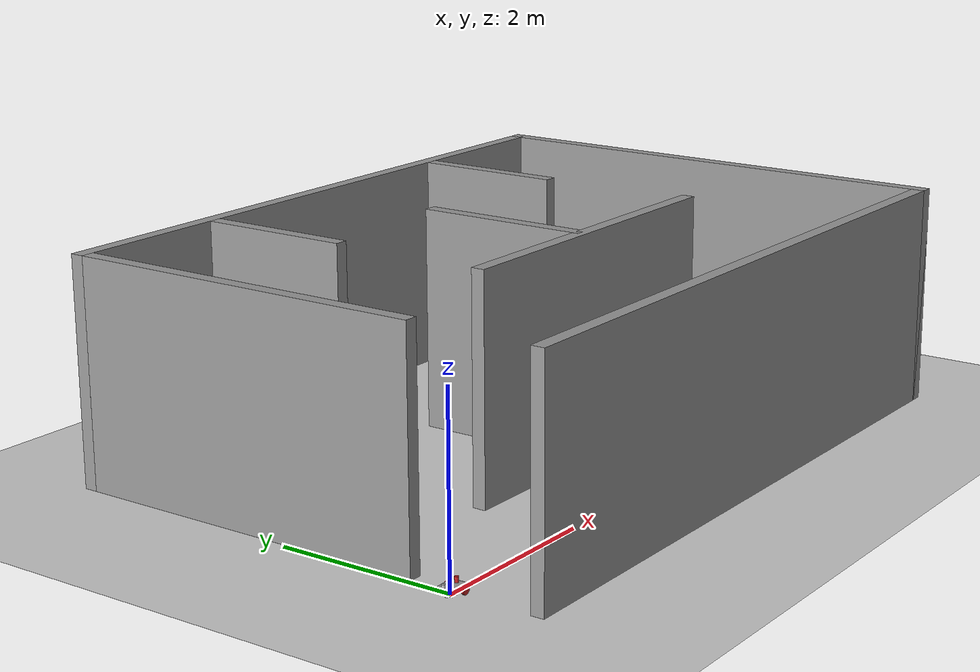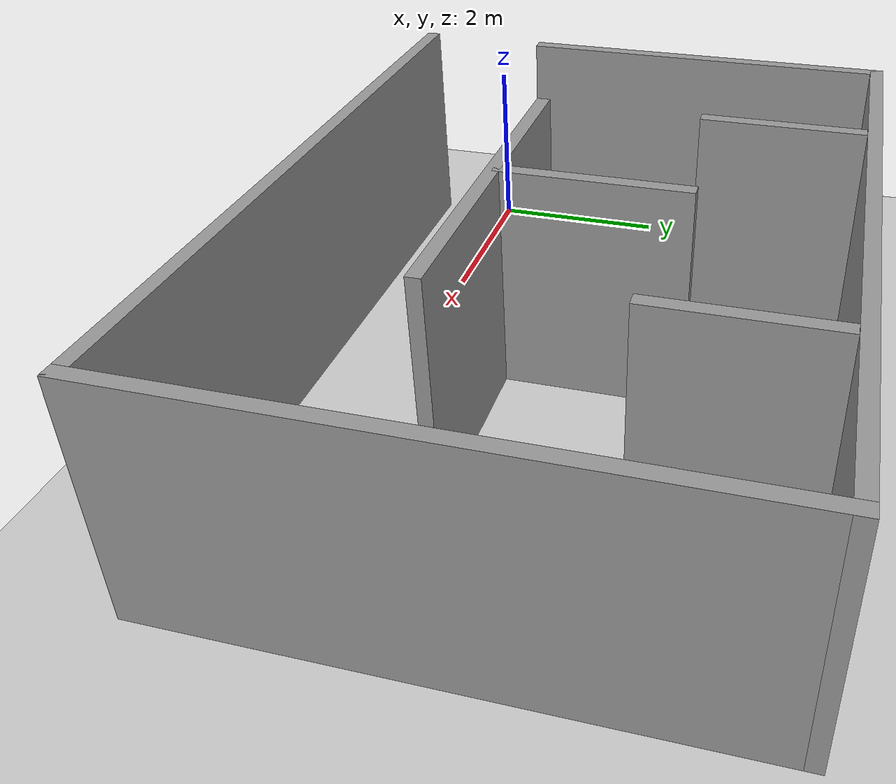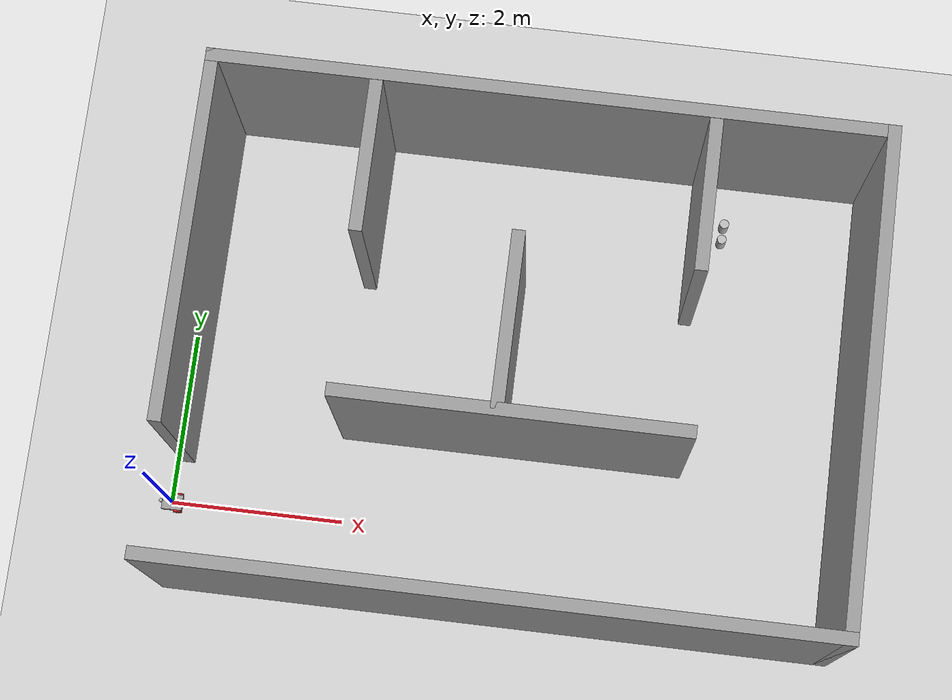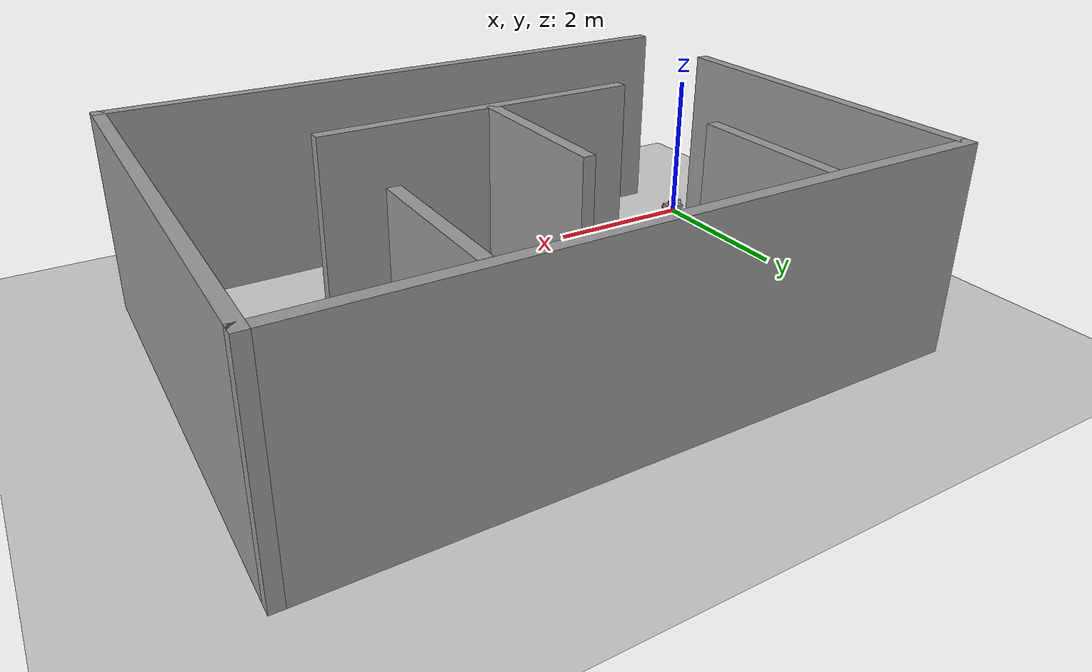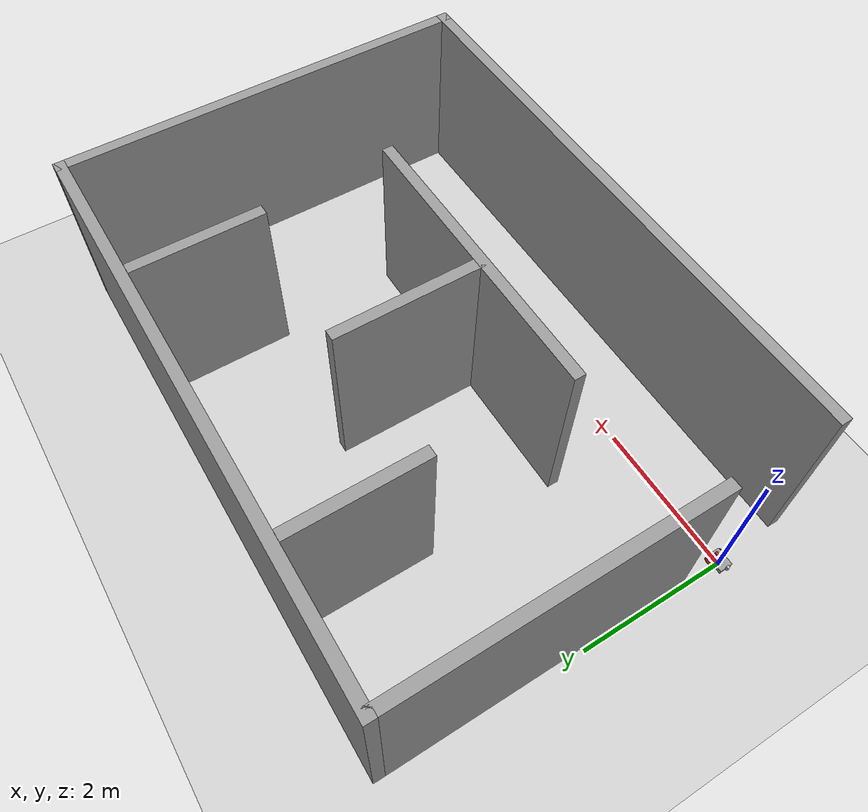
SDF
<sdf version="1.6">
 <world name="default">
  <light name="sun" type="directional">
   <pose>0 0 10 0 -0 0</pose>
   <diffuse>0.8 0.8 0.8 1</diffuse>
   <specular>0.2 0.2 0.2 1</specular>
   <attenuation>
    <range>1000</range>
    <constant>0.9</constant>
    <linear>0.01</linear>
    <quadratic>0.001</quadratic>
   </attenuation>
   <direction>-0.5 0.1 -0.9</direction>
  </light>
  <model name="ground_plane">
   <static>1</static>
   <link name="link">
    <collision name="collision">
     <geometry><plane><normal>0 0 1</normal><size>100 100</size></plane></geometry>
     <surface>
      <contact><collide_bitmask>65535</collide_bitmask></contact>
      <friction><ode><mu>100</mu><mu2>50</mu2></ode></friction>
     </surface>
    </collision>
    <visual name="visual">
     <cast_shadows>0</cast_shadows>
     <geometry><plane><normal>0 0 1</normal><size>100 100</size></plane></geometry>
     <material>
      <script><uri>file://media/materials/scripts/gazebo.material</uri><name>Gazebo/Grey</name></script>
     </material>
    </visual>
   </link>
  </model>
  <gravity>0 0 -9.8</gravity>
  <magnetic_field>6e-06 2.3e-05 -4.2e-05</magnetic_field>
  <atmosphere type="adiabatic"/>
  <physics name="default_physics" default="0" type="ode">
   <max_step_size>0.001</max_step_size>
   <real_time_factor>1</real_time_factor>
   <real_time_update_rate>1000</real_time_update_rate>
  </physics>
  <scene><ambient>0.4 0.4 0.4 1</ambient><background>0.7 0.7 0.7 1</background><shadows>1</shadows></scene>
  <audio><device>default</device></audio>
  <spherical_coordinates>
   <surface_model>EARTH_WGS84</surface_model>
   <latitude_deg>0</latitude_deg>
   <longitude_deg>0</longitude_deg>
   <elevation>0</elevation>
   <heading_deg>0</heading_deg>
  </spherical_coordinates>
  <model name="test_maze">
   <pose>3.91587 1.87197 0 0 -0 0</pose>
   <link name="Wall_1">
    <collision name="Wall_1_Collision">
     <geometry><box><size>7.75 0.15 2.5</size></box></geometry>
     <pose>0 0 1.25 0 -0 0</pose>
    </collision>
    <visual name="Wall_1_Visual">
     <pose>0 0 1.25 0 -0 0</pose>
     <geometry><box><size>7.75 0.15 2.5</size></box></geometry>
     <material>
      <script><uri>file://media/materials/scripts/gazebo.material</uri><name>Gazebo/Grey</name></script>
      <ambient>1 1 1 1</ambient>
     </material>
     <meta><layer>0</layer></meta>
    </visual>
    <pose>0 -2.8 0 0 -0 0</pose>
   </link>
   <link name="Wall_13">
    <collision name="Wall_13_Collision">
     <geometry><box><size>1.75 0.15 2.5</size></box></geometry>
     <pose>0 0 1.25 0 -0 0</pose>
    </collision>
    <visual name="Wall_13_Visual">
     <pose>0 0 1.25 0 -0 0</pose>
     <geometry><box><size>1.75 0.15 2.5</size></box></geometry>
     <material>
      <script><uri>file://media/materials/scripts/gazebo.material</uri><name>Gazebo/Grey</name></script>
      <ambient>1 1 1 1</ambient>
     </material>
     <meta><layer>0</layer></meta>
    </visual>
    <pose>1.84159 1.84882 0 0 -0 -1.5708</pose>
   </link>
   <link name="Wall_15">
    <collision name="Wall_15_Collision">
     <geometry><box><size>4 0.15 2.5</size></box></geometry>
     <pose>0 0 1.25 0 -0 0</pose>
    </collision>
    <visual name="Wall_15_Visual">
     <pose>0 0 1.25 0 -0 0</pose>
     <geometry><box><size>4 0.15 2.5</size></box></geometry>
     <material>
      <script><uri>file://media/materials/scripts/gazebo.material</uri><name>Gazebo/Grey</name></script>
      <ambient>1 1 1 1</ambient>
     </material>
     <meta><layer>0</layer></meta>
    </visual>
    <pose>-0.026602 -0.807875 0 0 -0 0</pose>
   </link>
   <link name="Wall_2">
    <collision name="Wall_2_Collision">
     <geometry><box><size>5.75 0.15 2.5</size></box></geometry>
     <pose>0 0 1.25 0 -0 0</pose>
    </collision>
    <visual name="Wall_2_Visual">
     <pose>0 0 1.25 0 -0 0</pose>
     <geometry><box><size>5.75 0.15 2.5</size></box></geometry>
     <material>
      <script><uri>file://media/materials/scripts/gazebo.material</uri><name>Gazebo/Grey</name></script>
      <ambient>1 1 1 1</ambient>
     </material>
     <meta><layer>0</layer></meta>
    </visual>
    <pose>3.8 0 0 0 -0 1.5708</pose>
   </link>
   <link name="Wall_3">
    <collision name="Wall_3_Collision">
     <geometry><box><size>7.75 0.15 2.5</size></box></geometry>
     <pose>0 0 1.25 0 -0 0</pose>
    </collision>
    <visual name="Wall_3_Visual">
     <pose>0 0 1.25 0 -0 0</pose>
     <geometry><box><size>7.75 0.15 2.5</size></box></geometry>
     <material>
      <script><uri>file://media/materials/scripts/gazebo.material</uri><name>Gazebo/Grey</name></script>
      <ambient>1 1 1 1</ambient>
     </material>
     <meta><layer>0</layer></meta>
    </visual>
    <pose>0 2.8 0 0 -0 3.14159</pose>
   </link>
   <link name="Wall_4">
    <collision name="Wall_4_Collision">
     <geometry><box><size>4.25 0.15 2.5</size></box></geometry>
     <pose>0 0 1.25 0 -0 0</pose>
    </collision>
    <visual name="Wall_4_Visual">
     <pose>0 0 1.25 0 -0 0</pose>
     <geometry><box><size>4.25 0.15 2.5</size></box></geometry>
     <material>
      <script><uri>file://media/materials/scripts/gazebo.material</uri><name>Gazebo/Grey</name></script>
      <ambient>1 1 1 1</ambient>
     </material>
     <meta><layer>0</layer></meta>
    </visual>
    <pose>-3.8 0.75 0 0 -0 -1.5708</pose>
   </link>
   <link name="Wall_6">
    <collision name="Wall_6_Collision">
     <geometry><box><size>1.75 0.15 2.5</size></box></geometry>
     <pose>0 0 1.25 0 -0 0</pose>
    </collision>
    <visual name="Wall_6_Visual">
     <pose>0 0 1.25 0 -0 0</pose>
     <geometry><box><size>1.75 0.15 2.5</size></box></geometry>
     <material>
      <script><uri>file://media/materials/scripts/gazebo.material</uri><name>Gazebo/Grey</name></script>
      <ambient>1 1 1 1</ambient>
     </material>
     <meta><layer>0</layer></meta>
    </visual>
    <pose>-1.9516 1.84882 0 0 -0 -1.5708</pose>
   </link>
   <link name="Wall_8">
    <collision name="Wall_8_Collision">
     <geometry><box><size>2 0.15 2.5</size></box></geometry>
     <pose>0 0 1.25 0 -0 0</pose>
    </collision>
    <visual name="Wall_8_Visual">
     <pose>0 0 1.25 0 -0 0</pose>
     <geometry><box><size>2 0.15 2.5</size></box></geometry>
     <material>
      <script><uri>file://media/materials/scripts/gazebo.material</uri><name>Gazebo/Grey</name></script>
      <ambient>1 1 1 1</ambient>
     </material>
     <meta><layer>0</layer></meta>
    </visual>
    <pose>-0.177369 0.194309 0 0 -0 -1.5708</pose>
   </link>
   <static>1</static>
  </model>
  <model name="dtw_robot1">
   <link name="base_link">
    <inertial>
     <pose>-0.07 0 0.07 0 -0 0</pose>
     <mass>1</mass>
     <inertia><ixx>0.001</ixx><ixy>0</ixy><ixz>0</ixz><iyy>0.001</iyy><iyz>0</iyz><izz>0.001</izz></inertia>
    </inertial>
    <collision name="base_link_fixed_joint_lump__ball_link_collision">
     <pose>-0.14 0 0.04 0 -0 0</pose>
     <geometry><sphere><radius>0.04</radius></sphere></geometry>
     <surface><friction><ode><mu>0.5</mu><mu2>0.5</mu2></ode></friction></surface>
    </collision>
    <collision name="base_link_fixed_joint_lump__body_link_collision_1">
     <pose>-0.07 0 0.07 0 -0 0</pose>
     <geometry><box><size>0.24 0.178 0.06</size></box></geometry>
    </collision>
    <collision name="base_link_fixed_joint_lump__front_laser_link_collision_2">
     <pose>0 0 0.13 0 -0 0</pose>
     <geometry><cylinder><length>0.06</length><radius>0.02</radius></cylinder></geometry>
    </collision>
    <collision name="base_link_fixed_joint_lump__sonar_back_link_collision_3">
     <pose>-0.2 0 0.12 0 -0 3.1415</pose>
     <geometry><cylinder><length>0.06</length><radius>0.02</radius></cylinder></geometry>
    </collision>
    <visual name="base_link_fixed_joint_lump__ball_link_visual">
     <pose>-0.14 0 0.04 0 -0 0</pose>
     <geometry><sphere><radius>0.04</radius></sphere></geometry>
     <material>
      <script><name>Gazebo/Gray</name><uri>file://media/materials/scripts/gazebo.material</uri></script>
     </material>
    </visual>
    <visual name="base_link_fixed_joint_lump__body_link_visual_1">
     <pose>-0.07 0 0.07 0 -0 0</pose>
     <geometry><box><size>0.24 0.18 0.06</size></box></geometry>
     <material>
      <script><name>Gazebo/Gray</name><uri>file://media/materials/scripts/gazebo.material</uri></script>
     </material>
    </visual>
    <visual name="base_link_fixed_joint_lump__front_laser_link_visual_2">
     <pose>0 0 0.13 0 -0 0</pose>
     <geometry><cylinder><length>0.06</length><radius>0.02</radius></cylinder></geometry>
     <material>
      <script><name>Gazebo/Red</name><uri>file://media/materials/scripts/gazebo.material</uri></script>
     </material>
    </visual>
    <visual name="base_link_fixed_joint_lump__sonar_back_link_visual_3">
     <pose>-0.2 0 0.12 0 -0 3.1415</pose>
     <geometry><cylinder><length>0.06</length><radius>0.02</radius></cylinder></geometry>
     <material><script><uri>__default__</uri><name>__default__</name></script></material>
    </visual>
    <sensor name="front_laser" type="ray">
     <visualize>0</visualize>
     <update_rate>10</update_rate>
     <ray>
      <scan>
       <horizontal>
        <samples>400</samples>
        <resolution>1</resolution>
        <min_angle>-2.61799</min_angle>
        <max_angle>2.61799</max_angle>
       </horizontal>
       <vertical><samples>1</samples><min_angle>0</min_angle><max_angle>0</max_angle></vertical>
      </scan>
      <range><min>0.1</min><max>20</max><resolution>0.01</resolution></range>
      <noise><type>gaussian</type><mean>0</mean><stddev>0.01</stddev></noise>
     </ray>
     <plugin name="gazebo_ros_lidar_controller" filename="libgazebo_ros_laser.so">
      <topicName>front_laser/scan</topicName>
      <frameName>front_laser_link</frameName>
      <robotNamespace>/dtw_robot1/</robotNamespace>
     </plugin>
     <pose>0 0 0.13 0 -0 0</pose>
    </sensor>
    <sensor name="head_camera" type="camera">
     <update_rate>10</update_rate>
     <camera name="head_camera">
      <pose>0 0 0 -1.57079 -1.57079 3.14159</pose>
      <horizontal_fov>1.39626</horizontal_fov>
      <image><width>800</width><height>600</height><format>R8G8B8</format></image>
      <clip><near>0.02</near><far>300</far></clip>
      <noise><type>gaussian</type><mean>0</mean><stddev>0.007</stddev></noise>
     </camera>
     <plugin name="camera_controller" filename="libgazebo_ros_camera.so">
      <alwaysOn>1</alwaysOn>
      <updateRate>0.0</updateRate>
      <cameraName>head_camera</cameraName>
      <imageTopicName>image_raw</imageTopicName>
      <cameraInfoTopicName>camera_info</cameraInfoTopicName>
      <frameName>head_camera_link</frameName>
      <hackBaseline>0.07</hackBaseline>
      <distortionK1>0.0</distortionK1>
      <distortionK2>0.0</distortionK2>
      <distortionK3>0.0</distortionK3>
      <distortionT1>0.0</distortionT1>
      <distortionT2>0.0</distortionT2>
      <robotNamespace>/dtw_robot1/</robotNamespace>
     </plugin>
     <pose>0.1 0 0.08 -1.5708 -0 -1.5708</pose>
    </sensor>
    <sensor name="imu_sensor" type="imu">
     <always_on>1</always_on>
     <update_rate>100</update_rate>
     <visualize>1</visualize>
     <topic>data</topic>
     <plugin name="imu_plugin" filename="libgazebo_ros_imu_sensor.so">
      <topicName>imu/data</topicName>
      <bodyName>imu_link</bodyName>
      <updateRateHZ>10.0</updateRateHZ>
      <gaussianNoise>0.0</gaussianNoise>
      <xyzOffset>0 0 0</xyzOffset>
      <rpyOffset>0 0 0</rpyOffset>
      <frameName>dtw_robot1/imu_link</frameName>
      <robotNamespace>/dtw_robot1/</robotNamespace>
     </plugin>
     <pose>-0.05 0 0.1 0 -0 0</pose>
    </sensor>
    <sensor name="sonar" type="ray">
     <update_rate>20</update_rate>
     <ray>
      <scan>
       <horizontal>
        <samples>3</samples>
        <resolution>1</resolution>
        <min_angle>-0.05</min_angle>
        <max_angle>0.05</max_angle>
       </horizontal>
       <vertical>
        <samples>3</samples>
        <resolution>1</resolution>
        <min_angle>-0.05</min_angle>
        <max_angle>0.05</max_angle>
       </vertical>
      </scan>
      <range><min>0.03</min><max>2</max><resolution>0.02</resolution></range>
     </ray>
     <plugin name="gazebo_ros_range" filename="libgazebo_ros_range.so">
      <gaussianNoise>0.005</gaussianNoise>
      <alwaysOn>1</alwaysOn>
      <updateRate>10</updateRate>
      <topicName>sonar_back/range</topicName>
      <frameName>dtw_robot1/sonar_back_link</frameName>
      <radiation>ULTRASOUND</radiation>
      <fov>0.1</fov>
      <robotNamespace>/dtw_robot1/</robotNamespace>
     </plugin>
     <pose>-0.2 0 0.12 0 -0 3.1415</pose>
    </sensor>
   </link>
   <link name="left_wheel_link">
    <pose>0 0.1 0.05 -1.5708 0 0</pose>
    <inertial>
     <mass>0.1</mass>
     <inertia><ixx>0.0001</ixx><ixy>0</ixy><ixz>0</ixz><iyy>0.0001</iyy><iyz>0</iyz><izz>0.0001</izz></inertia>
    </inertial>
    <collision name="left_wheel_link_collision">
     <geometry><cylinder><length>0.02</length><radius>0.05</radius></cylinder></geometry>
     <surface>
      <contact><ode><kp>50000</kp><kd>10</kd></ode></contact>
      <friction><ode><mu>2.5</mu><mu2>2.5</mu2></ode></friction>
     </surface>
    </collision>
    <visual name="left_wheel_link_visual">
     <geometry><cylinder><length>0.02</length><radius>0.05</radius></cylinder></geometry>
     <material>
      <script><name>Gazebo/Red</name><uri>file://media/materials/scripts/gazebo.material</uri></script>
     </material>
    </visual>
   </link>
   <joint name="left_wheel_joint" type="revolute">
    <child>left_wheel_link</child>
    <parent>base_link</parent>
    <axis>
     <xyz>0 1 0</xyz>
     <limit><lower>-1e+16</lower><upper>1e+16</upper></limit>
     <dynamics>
      <damping>0.1</damping>
      <friction>0</friction>
      <spring_reference>0</spring_reference>
      <spring_stiffness>0</spring_stiffness>
     </dynamics>
     <use_parent_model_frame>1</use_parent_model_frame>
    </axis>
   </joint>
   <link name="right_wheel_link">
    <pose>0 -0.1 0.05 -1.5708 0 0</pose>
    <inertial>
     <mass>0.1</mass>
     <inertia><ixx>0.0001</ixx><ixy>0</ixy><ixz>0</ixz><iyy>0.0001</iyy><iyz>0</iyz><izz>0.0001</izz></inertia>
    </inertial>
    <collision name="right_wheel_link_collision">
     <geometry><cylinder><length>0.02</length><radius>0.05</radius></cylinder></geometry>
     <surface>
      <contact><ode><kp>50000</kp><kd>10</kd></ode></contact>
      <friction><ode><mu>2.5</mu><mu2>2.5</mu2></ode></friction>
     </surface>
    </collision>
    <visual name="right_wheel_link_visual">
     <geometry><cylinder><length>0.02</length><radius>0.05</radius></cylinder></geometry>
     <material>
      <script><name>Gazebo/Red</name><uri>file://media/materials/scripts/gazebo.material</uri></script>
     </material>
    </visual>
   </link>
   <joint name="right_wheel_joint" type="revolute">
    <child>right_wheel_link</child>
    <parent>base_link</parent>
    <axis>
     <xyz>0 1 0</xyz>
     <limit><lower>-1e+16</lower><upper>1e+16</upper></limit>
     <dynamics>
      <damping>0.1</damping>
      <friction>0</friction>
      <spring_reference>0</spring_reference>
      <spring_stiffness>0</spring_stiffness>
     </dynamics>
     <use_parent_model_frame>1</use_parent_model_frame>
    </axis>
   </joint>
   <static>0</static>
   <plugin name="gazebo_ros_control" filename="libgazebo_ros_control.so">
    <robotNamespace>dtw_robot1</robotNamespace>
    <robotSimType>gazebo_ros_control/DefaultRobotHWSim</robotSimType>
    <legacyModeNS>1</legacyModeNS>
   </plugin>
   <pose>0.079752 -0.009585 -0.000101 3e-06 0.000717 0.011331</pose>
  </model>
  <model name="beer">
   <link name="link">
    <pose>0 0 0.115 0 -0 0</pose>
    <inertial>
     <mass>0.39</mass>
     <inertia><ixx>0.00058</ixx><ixy>0</ixy><ixz>0</ixz><iyy>0.00058</iyy><iyz>0</iyz><izz>0.00019</izz></inertia>
    </inertial>
    <collision name="collision">
     <geometry><cylinder><radius>0.055</radius><length>0.23</length></cylinder></geometry>
    </collision>
    <visual name="visual">
     <geometry><cylinder><radius>0.055</radius><length>0.23</length></cylinder></geometry>
     <material>
      <script>
       <uri>model://beer/materials/scripts</uri>
       <uri>model://beer/materials/textures</uri>
       <name>Beer/Diffuse</name>
      </script>
     </material>
    </visual>
   </link>
   <pose>6.08875 3.89335 -3e-06 1e-06 -0 -2.5e-05</pose>
  </model>
  <model name="beer_0">
   <link name="link">
    <pose>0 0 0.115 0 -0 0</pose>
    <inertial>
     <mass>0.39</mass>
     <inertia><ixx>0.00058</ixx><ixy>0</ixy><ixz>0</ixz><iyy>0.00058</iyy><iyz>0</iyz><izz>0.00019</izz></inertia>
    </inertial>
    <collision name="collision">
     <geometry><cylinder><radius>0.055</radius><length>0.23</length></cylinder></geometry>
    </collision>
    <visual name="visual">
     <geometry><cylinder><radius>0.055</radius><length>0.23</length></cylinder></geometry>
     <material>
      <script>
       <uri>model://beer/materials/scripts</uri>
       <uri>model://beer/materials/textures</uri>
       <name>Beer/Diffuse</name>
      </script>
     </material>
    </visual>
   </link>
   <pose>6.10019 4.08748 -7e-06 -0 -0 -2.5e-05</pose>
  </model>
 </world>
</sdf>
